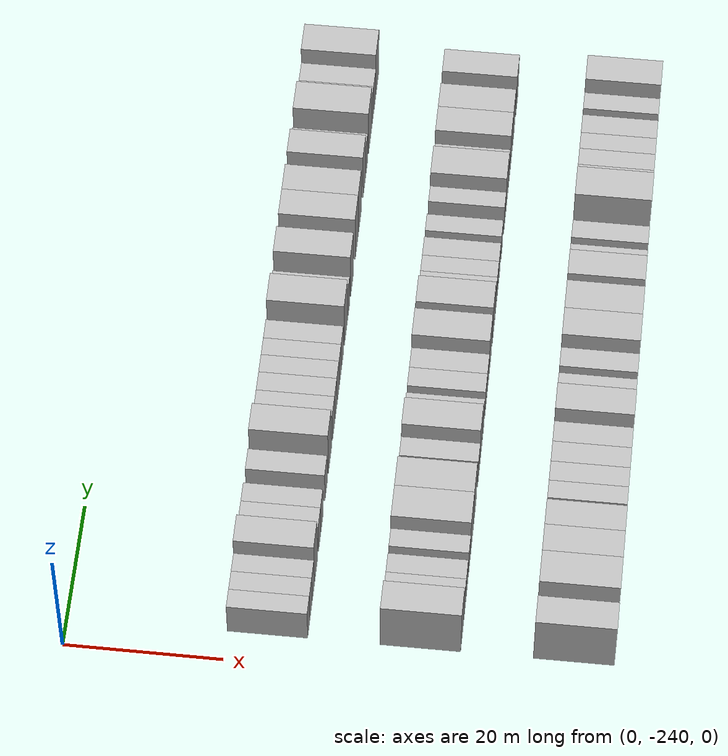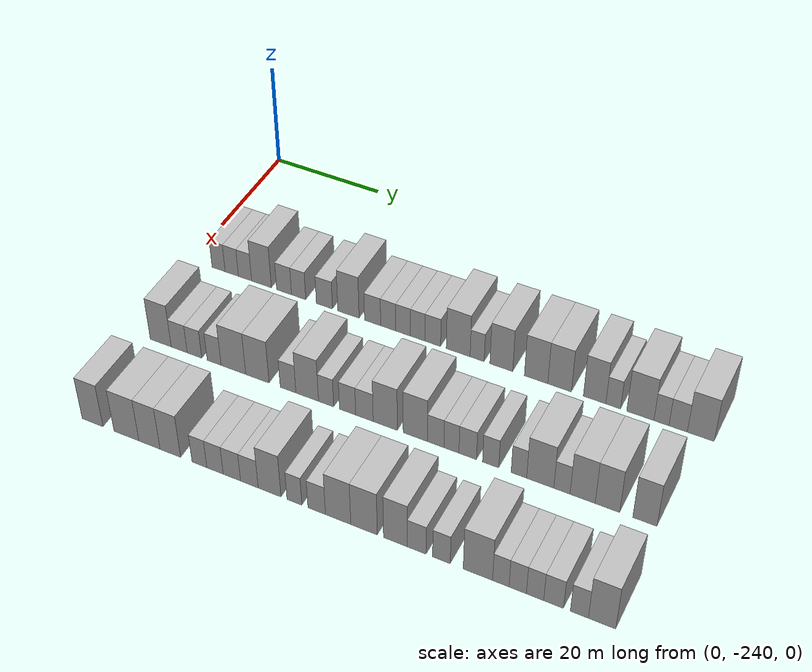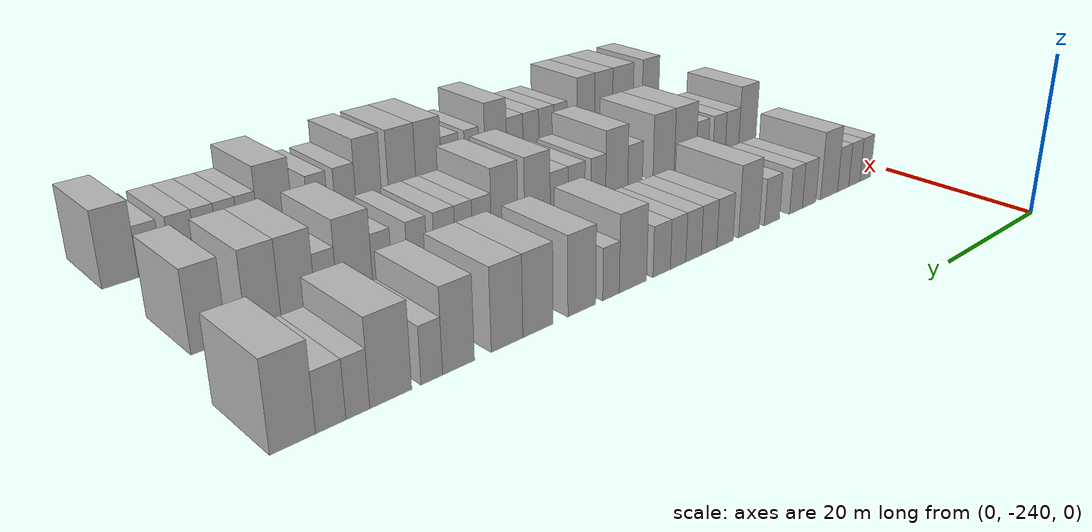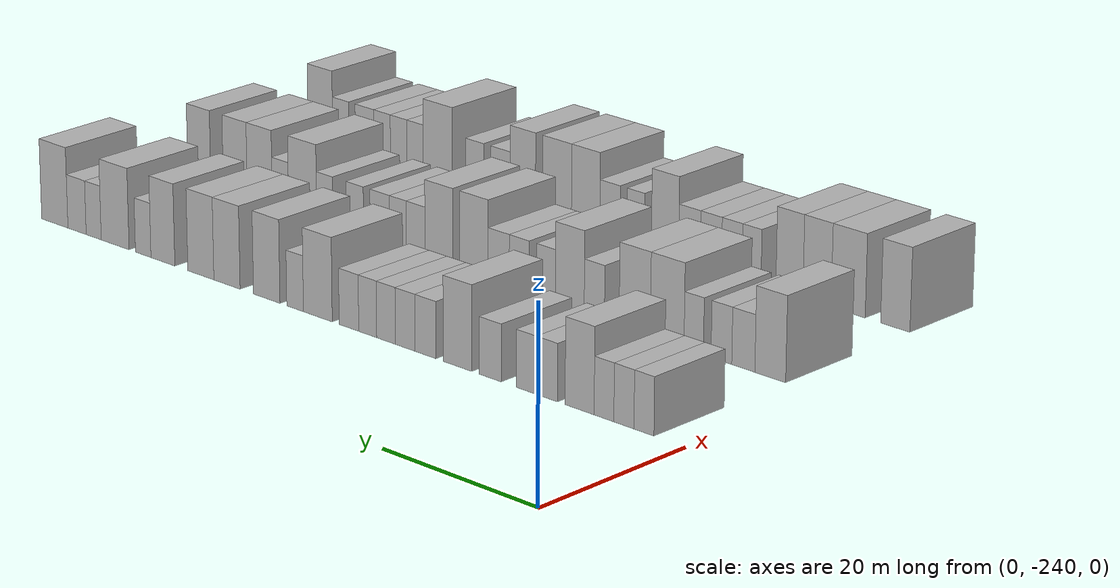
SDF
<sdf version="1.6">
 <world name="default">
  <model name="building_1">
   <static>1</static>
   <pose>25.0000 -234.7300 0 0.000000 0.000000 0.000000</pose>
   <link name="link">
    <pose>0 0 3.00 0 0 0</pose>
    <collision name="collision"><geometry><box><size>10.0000 2.5399 6.0000</size></box></geometry></collision>
    <visual name="visual">
     <cast_shadows>0</cast_shadows>
     <geometry><box><size>10.0000 2.5399 6.0000</size></box></geometry>
     <material>
      <script>
       <uri>model://HANNAS_wall/materials/scripts</uri>
       <uri>model://HANNAS_wall/materials/textures</uri>
       <name>vrc/HANNAS_wall</name>
      </script>
     </material>
    </visual>
   </link>
  </model>
  <model name="building_2">
   <static>1</static>
   <pose>25.0000 -232.1696 0 0.000000 0.000000 0.000000</pose>
   <link name="link">
    <pose>0 0 3.00 0 0 0</pose>
    <collision name="collision"><geometry><box><size>10.0000 2.5809 6.0000</size></box></geometry></collision>
    <visual name="visual">
     <cast_shadows>0</cast_shadows>
     <geometry><box><size>10.0000 2.5809 6.0000</size></box></geometry>
     <material>
      <script>
       <uri>model://HANNAS_wall/materials/scripts</uri>
       <uri>model://HANNAS_wall/materials/textures</uri>
       <name>vrc/HANNAS_wall</name>
      </script>
     </material>
    </visual>
   </link>
  </model>
  <model name="building_3">
   <static>1</static>
   <pose>25.0000 -229.6061 0 0.000000 0.000000 0.000000</pose>
   <link name="link">
    <pose>0 0 3.00 0 0 0</pose>
    <collision name="collision"><geometry><box><size>10.0000 2.5462 6.0000</size></box></geometry></collision>
    <visual name="visual">
     <cast_shadows>0</cast_shadows>
     <geometry><box><size>10.0000 2.5462 6.0000</size></box></geometry>
     <material>
      <script>
       <uri>model://HANNAS_wall/materials/scripts</uri>
       <uri>model://HANNAS_wall/materials/textures</uri>
       <name>vrc/HANNAS_wall</name>
      </script>
     </material>
    </visual>
   </link>
  </model>
  <model name="building_4">
   <static>1</static>
   <pose>25.0000 -226.4390 0 0.000000 0.000000 0.000000</pose>
   <link name="link">
    <pose>0 0 4.50 0 0 0</pose>
    <collision name="collision"><geometry><box><size>10.0000 3.7880 9.0000</size></box></geometry></collision>
    <visual name="visual">
     <cast_shadows>0</cast_shadows>
     <geometry><box><size>10.0000 3.7880 9.0000</size></box></geometry>
     <material>
      <script>
       <uri>model://HANNAS_wall/materials/scripts</uri>
       <uri>model://HANNAS_wall/materials/textures</uri>
       <name>vrc/HANNAS_wall</name>
      </script>
     </material>
    </visual>
   </link>
  </model>
  <model name="building_5">
   <static>1</static>
   <pose>25.0000 -222.1377 0 0.000000 0.000000 0.000000</pose>
   <link name="link">
    <pose>0 0 3.00 0 0 0</pose>
    <collision name="collision"><geometry><box><size>10.0000 2.8146 6.0000</size></box></geometry></collision>
    <visual name="visual">
     <cast_shadows>0</cast_shadows>
     <geometry><box><size>10.0000 2.8146 6.0000</size></box></geometry>
     <material>
      <script>
       <uri>model://HANNAS_wall/materials/scripts</uri>
       <uri>model://HANNAS_wall/materials/textures</uri>
       <name>vrc/HANNAS_wall</name>
      </script>
     </material>
    </visual>
   </link>
  </model>
  <model name="building_6">
   <static>1</static>
   <pose>25.0000 -219.3900 0 0.000000 0.000000 0.000000</pose>
   <link name="link">
    <pose>0 0 3.00 0 0 0</pose>
    <collision name="collision"><geometry><box><size>10.0000 2.6808 6.0000</size></box></geometry></collision>
    <visual name="visual">
     <cast_shadows>0</cast_shadows>
     <geometry><box><size>10.0000 2.6808 6.0000</size></box></geometry>
     <material>
      <script>
       <uri>model://HANNAS_wall/materials/scripts</uri>
       <uri>model://HANNAS_wall/materials/textures</uri>
       <name>vrc/HANNAS_wall</name>
      </script>
     </material>
    </visual>
   </link>
  </model>
  <model name="building_7">
   <static>1</static>
   <pose>25.0000 -214.5539 0 0.000000 0.000000 0.000000</pose>
   <link name="link">
    <pose>0 0 3.00 0 0 0</pose>
    <collision name="collision"><geometry><box><size>10.0000 2.9915 6.0000</size></box></geometry></collision>
    <visual name="visual">
     <cast_shadows>0</cast_shadows>
     <geometry><box><size>10.0000 2.9915 6.0000</size></box></geometry>
     <material>
      <script>
       <uri>model://HANNAS_wall/materials/scripts</uri>
       <uri>model://HANNAS_wall/materials/textures</uri>
       <name>vrc/HANNAS_wall</name>
      </script>
     </material>
    </visual>
   </link>
  </model>
  <model name="building_8">
   <static>1</static>
   <pose>25.0000 -210.1084 0 0.000000 0.000000 0.000000</pose>
   <link name="link">
    <pose>0 0 4.50 0 0 0</pose>
    <collision name="collision"><geometry><box><size>10.0000 3.8995 9.0000</size></box></geometry></collision>
    <visual name="visual">
     <cast_shadows>0</cast_shadows>
     <geometry><box><size>10.0000 3.8995 9.0000</size></box></geometry>
     <material>
      <script>
       <uri>model://HANNAS_wall/materials/scripts</uri>
       <uri>model://HANNAS_wall/materials/textures</uri>
       <name>vrc/HANNAS_wall</name>
      </script>
     </material>
    </visual>
   </link>
  </model>
  <model name="building_9">
   <static>1</static>
   <pose>25.0000 -205.6947 0 0.000000 0.000000 0.000000</pose>
   <link name="link">
    <pose>0 0 3.00 0 0 0</pose>
    <collision name="collision"><geometry><box><size>10.0000 2.9279 6.0000</size></box></geometry></collision>
    <visual name="visual">
     <cast_shadows>0</cast_shadows>
     <geometry><box><size>10.0000 2.9279 6.0000</size></box></geometry>
     <material>
      <script>
       <uri>model://HANNAS_wall/materials/scripts</uri>
       <uri>model://HANNAS_wall/materials/textures</uri>
       <name>vrc/HANNAS_wall</name>
      </script>
     </material>
    </visual>
   </link>
  </model>
  <model name="building_10">
   <static>1</static>
   <pose>25.0000 -202.8635 0 0.000000 0.000000 0.000000</pose>
   <link name="link">
    <pose>0 0 3.00 0 0 0</pose>
    <collision name="collision"><geometry><box><size>10.0000 2.7345 6.0000</size></box></geometry></collision>
    <visual name="visual">
     <cast_shadows>0</cast_shadows>
     <geometry><box><size>10.0000 2.7345 6.0000</size></box></geometry>
     <material>
      <script>
       <uri>model://HANNAS_wall/materials/scripts</uri>
       <uri>model://HANNAS_wall/materials/textures</uri>
       <name>vrc/HANNAS_wall</name>
      </script>
     </material>
    </visual>
   </link>
  </model>
  <model name="building_11">
   <static>1</static>
   <pose>25.0000 -200.1783 0 0.000000 0.000000 0.000000</pose>
   <link name="link">
    <pose>0 0 3.00 0 0 0</pose>
    <collision name="collision"><geometry><box><size>10.0000 2.6359 6.0000</size></box></geometry></collision>
    <visual name="visual">
     <cast_shadows>0</cast_shadows>
     <geometry><box><size>10.0000 2.6359 6.0000</size></box></geometry>
     <material>
      <script>
       <uri>model://HANNAS_wall/materials/scripts</uri>
       <uri>model://HANNAS_wall/materials/textures</uri>
       <name>vrc/HANNAS_wall</name>
      </script>
     </material>
    </visual>
   </link>
  </model>
  <model name="building_12">
   <static>1</static>
   <pose>25.0000 -197.5821 0 0.000000 0.000000 0.000000</pose>
   <link name="link">
    <pose>0 0 3.00 0 0 0</pose>
    <collision name="collision"><geometry><box><size>10.0000 2.5566 6.0000</size></box></geometry></collision>
    <visual name="visual">
     <cast_shadows>0</cast_shadows>
     <geometry><box><size>10.0000 2.5566 6.0000</size></box></geometry>
     <material>
      <script>
       <uri>model://HANNAS_wall/materials/scripts</uri>
       <uri>model://HANNAS_wall/materials/textures</uri>
       <name>vrc/HANNAS_wall</name>
      </script>
     </material>
    </visual>
   </link>
  </model>
  <model name="building_13">
   <static>1</static>
   <pose>25.0000 -194.9062 0 0.000000 0.000000 0.000000</pose>
   <link name="link">
    <pose>0 0 3.00 0 0 0</pose>
    <collision name="collision"><geometry><box><size>10.0000 2.7951 6.0000</size></box></geometry></collision>
    <visual name="visual">
     <cast_shadows>0</cast_shadows>
     <geometry><box><size>10.0000 2.7951 6.0000</size></box></geometry>
     <material>
      <script>
       <uri>model://HANNAS_wall/materials/scripts</uri>
       <uri>model://HANNAS_wall/materials/textures</uri>
       <name>vrc/HANNAS_wall</name>
      </script>
     </material>
    </visual>
   </link>
  </model>
  <model name="building_14">
   <static>1</static>
   <pose>25.0000 -190.4212 0 0.000000 0.000000 0.000000</pose>
   <link name="link">
    <pose>0 0 4.50 0 0 0</pose>
    <collision name="collision"><geometry><box><size>10.0000 4.1749 9.0000</size></box></geometry></collision>
    <visual name="visual">
     <cast_shadows>0</cast_shadows>
     <geometry><box><size>10.0000 4.1749 9.0000</size></box></geometry>
     <material>
      <script>
       <uri>model://HANNAS_wall/materials/scripts</uri>
       <uri>model://HANNAS_wall/materials/textures</uri>
       <name>vrc/HANNAS_wall</name>
      </script>
     </material>
    </visual>
   </link>
  </model>
  <model name="building_15">
   <static>1</static>
   <pose>25.0000 -187.1157 0 0.000000 0.000000 0.000000</pose>
   <link name="link">
    <pose>0 0 3.00 0 0 0</pose>
    <collision name="collision"><geometry><box><size>10.0000 2.4363 6.0000</size></box></geometry></collision>
    <visual name="visual">
     <cast_shadows>0</cast_shadows>
     <geometry><box><size>10.0000 2.4363 6.0000</size></box></geometry>
     <material>
      <script>
       <uri>model://HANNAS_wall/materials/scripts</uri>
       <uri>model://HANNAS_wall/materials/textures</uri>
       <name>vrc/HANNAS_wall</name>
      </script>
     </material>
    </visual>
   </link>
  </model>
  <model name="building_16">
   <static>1</static>
   <pose>25.0000 -182.9373 0 0.000000 0.000000 0.000000</pose>
   <link name="link">
    <pose>0 0 4.50 0 0 0</pose>
    <collision name="collision"><geometry><box><size>10.0000 3.9205 9.0000</size></box></geometry></collision>
    <visual name="visual">
     <cast_shadows>0</cast_shadows>
     <geometry><box><size>10.0000 3.9205 9.0000</size></box></geometry>
     <material>
      <script>
       <uri>model://HANNAS_wall/materials/scripts</uri>
       <uri>model://HANNAS_wall/materials/textures</uri>
       <name>vrc/HANNAS_wall</name>
      </script>
     </material>
    </visual>
   </link>
  </model>
  <model name="building_17">
   <static>1</static>
   <pose>25.0000 -177.0001 0 0.000000 0.000000 0.000000</pose>
   <link name="link">
    <pose>0 0 4.50 0 0 0</pose>
    <collision name="collision"><geometry><box><size>10.0000 3.9538 9.0000</size></box></geometry></collision>
    <visual name="visual">
     <cast_shadows>0</cast_shadows>
     <geometry><box><size>10.0000 3.9538 9.0000</size></box></geometry>
     <material>
      <script>
       <uri>model://HANNAS_wall/materials/scripts</uri>
       <uri>model://HANNAS_wall/materials/textures</uri>
       <name>vrc/HANNAS_wall</name>
      </script>
     </material>
    </visual>
   </link>
  </model>
  <model name="building_18">
   <static>1</static>
   <pose>25.0000 -173.0439 0 0.000000 0.000000 0.000000</pose>
   <link name="link">
    <pose>0 0 4.50 0 0 0</pose>
    <collision name="collision"><geometry><box><size>10.0000 3.9588 9.0000</size></box></geometry></collision>
    <visual name="visual">
     <cast_shadows>0</cast_shadows>
     <geometry><box><size>10.0000 3.9588 9.0000</size></box></geometry>
     <material>
      <script>
       <uri>model://HANNAS_wall/materials/scripts</uri>
       <uri>model://HANNAS_wall/materials/textures</uri>
       <name>vrc/HANNAS_wall</name>
      </script>
     </material>
    </visual>
   </link>
  </model>
  <model name="building_19">
   <static>1</static>
   <pose>25.0000 -167.2151 0 0.000000 0.000000 0.000000</pose>
   <link name="link">
    <pose>0 0 4.50 0 0 0</pose>
    <collision name="collision"><geometry><box><size>10.0000 3.6988 9.0000</size></box></geometry></collision>
    <visual name="visual">
     <cast_shadows>0</cast_shadows>
     <geometry><box><size>10.0000 3.6988 9.0000</size></box></geometry>
     <material>
      <script>
       <uri>model://HANNAS_wall/materials/scripts</uri>
       <uri>model://HANNAS_wall/materials/textures</uri>
       <name>vrc/HANNAS_wall</name>
      </script>
     </material>
    </visual>
   </link>
  </model>
  <model name="building_20">
   <static>1</static>
   <pose>25.0000 -164.1573 0 0.000000 0.000000 0.000000</pose>
   <link name="link">
    <pose>0 0 3.00 0 0 0</pose>
    <collision name="collision"><geometry><box><size>10.0000 2.4168 6.0000</size></box></geometry></collision>
    <visual name="visual">
     <cast_shadows>0</cast_shadows>
     <geometry><box><size>10.0000 2.4168 6.0000</size></box></geometry>
     <material>
      <script>
       <uri>model://HANNAS_wall/materials/scripts</uri>
       <uri>model://HANNAS_wall/materials/textures</uri>
       <name>vrc/HANNAS_wall</name>
      </script>
     </material>
    </visual>
   </link>
  </model>
  <model name="building_21">
   <static>1</static>
   <pose>25.0000 -159.7480 0 0.000000 0.000000 0.000000</pose>
   <link name="link">
    <pose>0 0 4.50 0 0 0</pose>
    <collision name="collision"><geometry><box><size>10.0000 4.4018 9.0000</size></box></geometry></collision>
    <visual name="visual">
     <cast_shadows>0</cast_shadows>
     <geometry><box><size>10.0000 4.4018 9.0000</size></box></geometry>
     <material>
      <script>
       <uri>model://HANNAS_wall/materials/scripts</uri>
       <uri>model://HANNAS_wall/materials/textures</uri>
       <name>vrc/HANNAS_wall</name>
      </script>
     </material>
    </visual>
   </link>
  </model>
  <model name="building_22">
   <static>1</static>
   <pose>25.0000 -156.3460 0 0.000000 0.000000 0.000000</pose>
   <link name="link">
    <pose>0 0 3.00 0 0 0</pose>
    <collision name="collision"><geometry><box><size>10.0000 2.4022 6.0000</size></box></geometry></collision>
    <visual name="visual">
     <cast_shadows>0</cast_shadows>
     <geometry><box><size>10.0000 2.4022 6.0000</size></box></geometry>
     <material>
      <script>
       <uri>model://HANNAS_wall/materials/scripts</uri>
       <uri>model://HANNAS_wall/materials/textures</uri>
       <name>vrc/HANNAS_wall</name>
      </script>
     </material>
    </visual>
   </link>
  </model>
  <model name="building_23">
   <static>1</static>
   <pose>25.0000 -153.6827 0 0.000000 0.000000 0.000000</pose>
   <link name="link">
    <pose>0 0 3.00 0 0 0</pose>
    <collision name="collision"><geometry><box><size>10.0000 2.9243 6.0000</size></box></geometry></collision>
    <visual name="visual">
     <cast_shadows>0</cast_shadows>
     <geometry><box><size>10.0000 2.9243 6.0000</size></box></geometry>
     <material>
      <script>
       <uri>model://HANNAS_wall/materials/scripts</uri>
       <uri>model://HANNAS_wall/materials/textures</uri>
       <name>vrc/HANNAS_wall</name>
      </script>
     </material>
    </visual>
   </link>
  </model>
  <model name="building_24">
   <static>1</static>
   <pose>25.0000 -150.0973 0 0.000000 0.000000 0.000000</pose>
   <link name="link">
    <pose>0 0 4.50 0 0 0</pose>
    <collision name="collision"><geometry><box><size>10.0000 4.2466 9.0000</size></box></geometry></collision>
    <visual name="visual">
     <cast_shadows>0</cast_shadows>
     <geometry><box><size>10.0000 4.2466 9.0000</size></box></geometry>
     <material>
      <script>
       <uri>model://HANNAS_wall/materials/scripts</uri>
       <uri>model://HANNAS_wall/materials/textures</uri>
       <name>vrc/HANNAS_wall</name>
      </script>
     </material>
    </visual>
   </link>
  </model>
  <model name="building_115">
   <static>1</static>
   <pose>44.0000 -234.0257 0 0.000000 0.000000 0.000000</pose>
   <link name="link">
    <pose>0 0 4.50 0 0 0</pose>
    <collision name="collision"><geometry><box><size>10.0000 3.9485 9.0000</size></box></geometry></collision>
    <visual name="visual">
     <cast_shadows>0</cast_shadows>
     <geometry><box><size>10.0000 3.9485 9.0000</size></box></geometry>
     <material>
      <script>
       <uri>model://HANNAS_wall/materials/scripts</uri>
       <uri>model://HANNAS_wall/materials/textures</uri>
       <name>vrc/HANNAS_wall</name>
      </script>
     </material>
    </visual>
   </link>
  </model>
  <model name="building_116">
   <static>1</static>
   <pose>44.0000 -230.5556 0 0.000000 0.000000 0.000000</pose>
   <link name="link">
    <pose>0 0 3.00 0 0 0</pose>
    <collision name="collision"><geometry><box><size>10.0000 2.9916 6.0000</size></box></geometry></collision>
    <visual name="visual">
     <cast_shadows>0</cast_shadows>
     <geometry><box><size>10.0000 2.9916 6.0000</size></box></geometry>
     <material>
      <script>
       <uri>model://HANNAS_wall/materials/scripts</uri>
       <uri>model://HANNAS_wall/materials/textures</uri>
       <name>vrc/HANNAS_wall</name>
      </script>
     </material>
    </visual>
   </link>
  </model>
  <model name="building_117">
   <static>1</static>
   <pose>44.0000 -227.7098 0 0.000000 0.000000 0.000000</pose>
   <link name="link">
    <pose>0 0 3.00 0 0 0</pose>
    <collision name="collision"><geometry><box><size>10.0000 2.7000 6.0000</size></box></geometry></collision>
    <visual name="visual">
     <cast_shadows>0</cast_shadows>
     <geometry><box><size>10.0000 2.7000 6.0000</size></box></geometry>
     <material>
      <script>
       <uri>model://HANNAS_wall/materials/scripts</uri>
       <uri>model://HANNAS_wall/materials/textures</uri>
       <name>vrc/HANNAS_wall</name>
      </script>
     </material>
    </visual>
   </link>
  </model>
  <model name="building_118">
   <static>1</static>
   <pose>44.0000 -224.0791 0 0.000000 0.000000 0.000000</pose>
   <link name="link">
    <pose>0 0 3.00 0 0 0</pose>
    <collision name="collision"><geometry><box><size>10.0000 2.5614 6.0000</size></box></geometry></collision>
    <visual name="visual">
     <cast_shadows>0</cast_shadows>
     <geometry><box><size>10.0000 2.5614 6.0000</size></box></geometry>
     <material>
      <script>
       <uri>model://HANNAS_wall/materials/scripts</uri>
       <uri>model://HANNAS_wall/materials/textures</uri>
       <name>vrc/HANNAS_wall</name>
      </script>
     </material>
    </visual>
   </link>
  </model>
  <model name="building_119">
   <static>1</static>
   <pose>44.0000 -220.5550 0 0.000000 0.000000 0.000000</pose>
   <link name="link">
    <pose>0 0 4.50 0 0 0</pose>
    <collision name="collision"><geometry><box><size>10.0000 4.4866 9.0000</size></box></geometry></collision>
    <visual name="visual">
     <cast_shadows>0</cast_shadows>
     <geometry><box><size>10.0000 4.4866 9.0000</size></box></geometry>
     <material>
      <script>
       <uri>model://HANNAS_wall/materials/scripts</uri>
       <uri>model://HANNAS_wall/materials/textures</uri>
       <name>vrc/HANNAS_wall</name>
      </script>
     </material>
    </visual>
   </link>
  </model>
  <model name="building_120">
   <static>1</static>
   <pose>44.0000 -216.2073 0 0.000000 0.000000 0.000000</pose>
   <link name="link">
    <pose>0 0 4.50 0 0 0</pose>
    <collision name="collision"><geometry><box><size>10.0000 4.2089 9.0000</size></box></geometry></collision>
    <visual name="visual">
     <cast_shadows>0</cast_shadows>
     <geometry><box><size>10.0000 4.2089 9.0000</size></box></geometry>
     <material>
      <script>
       <uri>model://HANNAS_wall/materials/scripts</uri>
       <uri>model://HANNAS_wall/materials/textures</uri>
       <name>vrc/HANNAS_wall</name>
      </script>
     </material>
    </visual>
   </link>
  </model>
  <model name="building_121">
   <static>1</static>
   <pose>44.0000 -210.7141 0 0.000000 0.000000 0.000000</pose>
   <link name="link">
    <pose>0 0 3.00 0 0 0</pose>
    <collision name="collision"><geometry><box><size>10.0000 2.7776 6.0000</size></box></geometry></collision>
    <visual name="visual">
     <cast_shadows>0</cast_shadows>
     <geometry><box><size>10.0000 2.7776 6.0000</size></box></geometry>
     <material>
      <script>
       <uri>model://HANNAS_wall/materials/scripts</uri>
       <uri>model://HANNAS_wall/materials/textures</uri>
       <name>vrc/HANNAS_wall</name>
      </script>
     </material>
    </visual>
   </link>
  </model>
  <model name="building_122">
   <static>1</static>
   <pose>44.0000 -207.3305 0 0.000000 0.000000 0.000000</pose>
   <link name="link">
    <pose>0 0 4.50 0 0 0</pose>
    <collision name="collision"><geometry><box><size>10.0000 3.9896 9.0000</size></box></geometry></collision>
    <visual name="visual">
     <cast_shadows>0</cast_shadows>
     <geometry><box><size>10.0000 3.9896 9.0000</size></box></geometry>
     <material>
      <script>
       <uri>model://HANNAS_wall/materials/scripts</uri>
       <uri>model://HANNAS_wall/materials/textures</uri>
       <name>vrc/HANNAS_wall</name>
      </script>
     </material>
    </visual>
   </link>
  </model>
  <model name="building_123">
   <static>1</static>
   <pose>44.0000 -204.0072 0 0.000000 0.000000 0.000000</pose>
   <link name="link">
    <pose>0 0 3.00 0 0 0</pose>
    <collision name="collision"><geometry><box><size>10.0000 2.6569 6.0000</size></box></geometry></collision>
    <visual name="visual">
     <cast_shadows>0</cast_shadows>
     <geometry><box><size>10.0000 2.6569 6.0000</size></box></geometry>
     <material>
      <script>
       <uri>model://HANNAS_wall/materials/scripts</uri>
       <uri>model://HANNAS_wall/materials/textures</uri>
       <name>vrc/HANNAS_wall</name>
      </script>
     </material>
    </visual>
   </link>
  </model>
  <model name="building_124">
   <static>1</static>
   <pose>44.0000 -200.2692 0 0.000000 0.000000 0.000000</pose>
   <link name="link">
    <pose>0 0 3.00 0 0 0</pose>
    <collision name="collision"><geometry><box><size>10.0000 2.8190 6.0000</size></box></geometry></collision>
    <visual name="visual">
     <cast_shadows>0</cast_shadows>
     <geometry><box><size>10.0000 2.8190 6.0000</size></box></geometry>
     <material>
      <script>
       <uri>model://HANNAS_wall/materials/scripts</uri>
       <uri>model://HANNAS_wall/materials/textures</uri>
       <name>vrc/HANNAS_wall</name>
      </script>
     </material>
    </visual>
   </link>
  </model>
  <model name="building_125">
   <static>1</static>
   <pose>44.0000 -197.3698 0 0.000000 0.000000 0.000000</pose>
   <link name="link">
    <pose>0 0 3.00 0 0 0</pose>
    <collision name="collision"><geometry><box><size>10.0000 2.9800 6.0000</size></box></geometry></collision>
    <visual name="visual">
     <cast_shadows>0</cast_shadows>
     <geometry><box><size>10.0000 2.9800 6.0000</size></box></geometry>
     <material>
      <script>
       <uri>model://HANNAS_wall/materials/scripts</uri>
       <uri>model://HANNAS_wall/materials/textures</uri>
       <name>vrc/HANNAS_wall</name>
      </script>
     </material>
    </visual>
   </link>
  </model>
  <model name="building_126">
   <static>1</static>
   <pose>44.0000 -193.8263 0 0.000000 0.000000 0.000000</pose>
   <link name="link">
    <pose>0 0 4.50 0 0 0</pose>
    <collision name="collision"><geometry><box><size>10.0000 4.1069 9.0000</size></box></geometry></collision>
    <visual name="visual">
     <cast_shadows>0</cast_shadows>
     <geometry><box><size>10.0000 4.1069 9.0000</size></box></geometry>
     <material>
      <script>
       <uri>model://HANNAS_wall/materials/scripts</uri>
       <uri>model://HANNAS_wall/materials/textures</uri>
       <name>vrc/HANNAS_wall</name>
      </script>
     </material>
    </visual>
   </link>
  </model>
  <model name="building_127">
   <static>1</static>
   <pose>44.0000 -188.7531 0 0.000000 0.000000 0.000000</pose>
   <link name="link">
    <pose>0 0 4.50 0 0 0</pose>
    <collision name="collision"><geometry><box><size>10.0000 4.0395 9.0000</size></box></geometry></collision>
    <visual name="visual">
     <cast_shadows>0</cast_shadows>
     <geometry><box><size>10.0000 4.0395 9.0000</size></box></geometry>
     <material>
      <script>
       <uri>model://HANNAS_wall/materials/scripts</uri>
       <uri>model://HANNAS_wall/materials/textures</uri>
       <name>vrc/HANNAS_wall</name>
      </script>
     </material>
    </visual>
   </link>
  </model>
  <model name="building_128">
   <static>1</static>
   <pose>44.0000 -185.3558 0 0.000000 0.000000 0.000000</pose>
   <link name="link">
    <pose>0 0 3.00 0 0 0</pose>
    <collision name="collision"><geometry><box><size>10.0000 2.7552 6.0000</size></box></geometry></collision>
    <visual name="visual">
     <cast_shadows>0</cast_shadows>
     <geometry><box><size>10.0000 2.7552 6.0000</size></box></geometry>
     <material>
      <script>
       <uri>model://HANNAS_wall/materials/scripts</uri>
       <uri>model://HANNAS_wall/materials/textures</uri>
       <name>vrc/HANNAS_wall</name>
      </script>
     </material>
    </visual>
   </link>
  </model>
  <model name="building_129">
   <static>1</static>
   <pose>44.0000 -182.7346 0 0.000000 0.000000 0.000000</pose>
   <link name="link">
    <pose>0 0 3.00 0 0 0</pose>
    <collision name="collision"><geometry><box><size>10.0000 2.4872 6.0000</size></box></geometry></collision>
    <visual name="visual">
     <cast_shadows>0</cast_shadows>
     <geometry><box><size>10.0000 2.4872 6.0000</size></box></geometry>
     <material>
      <script>
       <uri>model://HANNAS_wall/materials/scripts</uri>
       <uri>model://HANNAS_wall/materials/textures</uri>
       <name>vrc/HANNAS_wall</name>
      </script>
     </material>
    </visual>
   </link>
  </model>
  <model name="building_130">
   <static>1</static>
   <pose>44.0000 -180.0536 0 0.000000 0.000000 0.000000</pose>
   <link name="link">
    <pose>0 0 3.00 0 0 0</pose>
    <collision name="collision"><geometry><box><size>10.0000 2.8748 6.0000</size></box></geometry></collision>
    <visual name="visual">
     <cast_shadows>0</cast_shadows>
     <geometry><box><size>10.0000 2.8748 6.0000</size></box></geometry>
     <material>
      <script>
       <uri>model://HANNAS_wall/materials/scripts</uri>
       <uri>model://HANNAS_wall/materials/textures</uri>
       <name>vrc/HANNAS_wall</name>
      </script>
     </material>
    </visual>
   </link>
  </model>
  <model name="building_131">
   <static>1</static>
   <pose>44.0000 -176.3027 0 0.000000 0.000000 0.000000</pose>
   <link name="link">
    <pose>0 0 3.00 0 0 0</pose>
    <collision name="collision"><geometry><box><size>10.0000 2.6269 6.0000</size></box></geometry></collision>
    <visual name="visual">
     <cast_shadows>0</cast_shadows>
     <geometry><box><size>10.0000 2.6269 6.0000</size></box></geometry>
     <material>
      <script>
       <uri>model://HANNAS_wall/materials/scripts</uri>
       <uri>model://HANNAS_wall/materials/textures</uri>
       <name>vrc/HANNAS_wall</name>
      </script>
     </material>
    </visual>
   </link>
  </model>
  <model name="building_132">
   <static>1</static>
   <pose>44.0000 -171.7484 0 0.000000 0.000000 0.000000</pose>
   <link name="link">
    <pose>0 0 3.00 0 0 0</pose>
    <collision name="collision"><geometry><box><size>10.0000 2.4817 6.0000</size></box></geometry></collision>
    <visual name="visual">
     <cast_shadows>0</cast_shadows>
     <geometry><box><size>10.0000 2.4817 6.0000</size></box></geometry>
     <material>
      <script>
       <uri>model://HANNAS_wall/materials/scripts</uri>
       <uri>model://HANNAS_wall/materials/textures</uri>
       <name>vrc/HANNAS_wall</name>
      </script>
     </material>
    </visual>
   </link>
  </model>
  <model name="building_133">
   <static>1</static>
   <pose>44.0000 -168.3449 0 0.000000 0.000000 0.000000</pose>
   <link name="link">
    <pose>0 0 4.50 0 0 0</pose>
    <collision name="collision"><geometry><box><size>10.0000 4.3253 9.0000</size></box></geometry></collision>
    <visual name="visual">
     <cast_shadows>0</cast_shadows>
     <geometry><box><size>10.0000 4.3253 9.0000</size></box></geometry>
     <material>
      <script>
       <uri>model://HANNAS_wall/materials/scripts</uri>
       <uri>model://HANNAS_wall/materials/textures</uri>
       <name>vrc/HANNAS_wall</name>
      </script>
     </material>
    </visual>
   </link>
  </model>
  <model name="building_134">
   <static>1</static>
   <pose>44.0000 -164.9098 0 0.000000 0.000000 0.000000</pose>
   <link name="link">
    <pose>0 0 3.00 0 0 0</pose>
    <collision name="collision"><geometry><box><size>10.0000 2.5447 6.0000</size></box></geometry></collision>
    <visual name="visual">
     <cast_shadows>0</cast_shadows>
     <geometry><box><size>10.0000 2.5447 6.0000</size></box></geometry>
     <material>
      <script>
       <uri>model://HANNAS_wall/materials/scripts</uri>
       <uri>model://HANNAS_wall/materials/textures</uri>
       <name>vrc/HANNAS_wall</name>
      </script>
     </material>
    </visual>
   </link>
  </model>
  <model name="building_135">
   <static>1</static>
   <pose>44.0000 -161.6790 0 0.000000 0.000000 0.000000</pose>
   <link name="link">
    <pose>0 0 4.50 0 0 0</pose>
    <collision name="collision"><geometry><box><size>10.0000 3.9169 9.0000</size></box></geometry></collision>
    <visual name="visual">
     <cast_shadows>0</cast_shadows>
     <geometry><box><size>10.0000 3.9169 9.0000</size></box></geometry>
     <material>
      <script>
       <uri>model://HANNAS_wall/materials/scripts</uri>
       <uri>model://HANNAS_wall/materials/textures</uri>
       <name>vrc/HANNAS_wall</name>
      </script>
     </material>
    </visual>
   </link>
  </model>
  <model name="building_136">
   <static>1</static>
   <pose>44.0000 -157.8261 0 0.000000 0.000000 0.000000</pose>
   <link name="link">
    <pose>0 0 4.50 0 0 0</pose>
    <collision name="collision"><geometry><box><size>10.0000 3.7888 9.0000</size></box></geometry></collision>
    <visual name="visual">
     <cast_shadows>0</cast_shadows>
     <geometry><box><size>10.0000 3.7888 9.0000</size></box></geometry>
     <material>
      <script>
       <uri>model://HANNAS_wall/materials/scripts</uri>
       <uri>model://HANNAS_wall/materials/textures</uri>
       <name>vrc/HANNAS_wall</name>
      </script>
     </material>
    </visual>
   </link>
  </model>
  <model name="building_137">
   <static>1</static>
   <pose>44.0000 -152.0893 0 0.000000 0.000000 0.000000</pose>
   <link name="link">
    <pose>0 0 4.50 0 0 0</pose>
    <collision name="collision"><geometry><box><size>10.0000 3.6848 9.0000</size></box></geometry></collision>
    <visual name="visual">
     <cast_shadows>0</cast_shadows>
     <geometry><box><size>10.0000 3.6848 9.0000</size></box></geometry>
     <material>
      <script>
       <uri>model://HANNAS_wall/materials/scripts</uri>
       <uri>model://HANNAS_wall/materials/textures</uri>
       <name>vrc/HANNAS_wall</name>
      </script>
     </material>
    </visual>
   </link>
  </model>
  <model name="building_234">
   <static>1</static>
   <pose>63.0000 -234.1098 0 0.000000 0.000000 0.000000</pose>
   <link name="link">
    <pose>0 0 4.50 0 0 0</pose>
    <collision name="collision"><geometry><box><size>10.0000 3.7804 9.0000</size></box></geometry></collision>
    <visual name="visual">
     <cast_shadows>0</cast_shadows>
     <geometry><box><size>10.0000 3.7804 9.0000</size></box></geometry>
     <material>
      <script>
       <uri>model://HANNAS_wall/materials/scripts</uri>
       <uri>model://HANNAS_wall/materials/textures</uri>
       <name>vrc/HANNAS_wall</name>
      </script>
     </material>
    </visual>
   </link>
  </model>
  <model name="building_235">
   <static>1</static>
   <pose>63.0000 -227.9857 0 0.000000 0.000000 0.000000</pose>
   <link name="link">
    <pose>0 0 4.50 0 0 0</pose>
    <collision name="collision"><geometry><box><size>10.0000 4.4678 9.0000</size></box></geometry></collision>
    <visual name="visual">
     <cast_shadows>0</cast_shadows>
     <geometry><box><size>10.0000 4.4678 9.0000</size></box></geometry>
     <material>
      <script>
       <uri>model://HANNAS_wall/materials/scripts</uri>
       <uri>model://HANNAS_wall/materials/textures</uri>
       <name>vrc/HANNAS_wall</name>
      </script>
     </material>
    </visual>
   </link>
  </model>
  <model name="building_236">
   <static>1</static>
   <pose>63.0000 -223.8763 0 0.000000 0.000000 0.000000</pose>
   <link name="link">
    <pose>0 0 4.50 0 0 0</pose>
    <collision name="collision"><geometry><box><size>10.0000 3.7511 9.0000</size></box></geometry></collision>
    <visual name="visual">
     <cast_shadows>0</cast_shadows>
     <geometry><box><size>10.0000 3.7511 9.0000</size></box></geometry>
     <material>
      <script>
       <uri>model://HANNAS_wall/materials/scripts</uri>
       <uri>model://HANNAS_wall/materials/textures</uri>
       <name>vrc/HANNAS_wall</name>
      </script>
     </material>
    </visual>
   </link>
  </model>
  <model name="building_237">
   <static>1</static>
   <pose>63.0000 -220.1913 0 0.000000 0.000000 0.000000</pose>
   <link name="link">
    <pose>0 0 4.50 0 0 0</pose>
    <collision name="collision"><geometry><box><size>10.0000 3.6191 9.0000</size></box></geometry></collision>
    <visual name="visual">
     <cast_shadows>0</cast_shadows>
     <geometry><box><size>10.0000 3.6191 9.0000</size></box></geometry>
     <material>
      <script>
       <uri>model://HANNAS_wall/materials/scripts</uri>
       <uri>model://HANNAS_wall/materials/textures</uri>
       <name>vrc/HANNAS_wall</name>
      </script>
     </material>
    </visual>
   </link>
  </model>
  <model name="building_238">
   <static>1</static>
   <pose>63.0000 -215.0956 0 0.000000 0.000000 0.000000</pose>
   <link name="link">
    <pose>0 0 3.00 0 0 0</pose>
    <collision name="collision"><geometry><box><size>10.0000 2.5722 6.0000</size></box></geometry></collision>
    <visual name="visual">
     <cast_shadows>0</cast_shadows>
     <geometry><box><size>10.0000 2.5722 6.0000</size></box></geometry>
     <material>
      <script>
       <uri>model://HANNAS_wall/materials/scripts</uri>
       <uri>model://HANNAS_wall/materials/textures</uri>
       <name>vrc/HANNAS_wall</name>
      </script>
     </material>
    </visual>
   </link>
  </model>
  <model name="building_239">
   <static>1</static>
   <pose>63.0000 -212.4000 0 0.000000 0.000000 0.000000</pose>
   <link name="link">
    <pose>0 0 3.00 0 0 0</pose>
    <collision name="collision"><geometry><box><size>10.0000 2.8191 6.0000</size></box></geometry></collision>
    <visual name="visual">
     <cast_shadows>0</cast_shadows>
     <geometry><box><size>10.0000 2.8191 6.0000</size></box></geometry>
     <material>
      <script>
       <uri>model://HANNAS_wall/materials/scripts</uri>
       <uri>model://HANNAS_wall/materials/textures</uri>
       <name>vrc/HANNAS_wall</name>
      </script>
     </material>
    </visual>
   </link>
  </model>
  <model name="building_240">
   <static>1</static>
   <pose>63.0000 -209.5131 0 0.000000 0.000000 0.000000</pose>
   <link name="link">
    <pose>0 0 3.00 0 0 0</pose>
    <collision name="collision"><geometry><box><size>10.0000 2.9546 6.0000</size></box></geometry></collision>
    <visual name="visual">
     <cast_shadows>0</cast_shadows>
     <geometry><box><size>10.0000 2.9546 6.0000</size></box></geometry>
     <material>
      <script>
       <uri>model://HANNAS_wall/materials/scripts</uri>
       <uri>model://HANNAS_wall/materials/textures</uri>
       <name>vrc/HANNAS_wall</name>
      </script>
     </material>
    </visual>
   </link>
  </model>
  <model name="building_241">
   <static>1</static>
   <pose>63.0000 -206.5413 0 0.000000 0.000000 0.000000</pose>
   <link name="link">
    <pose>0 0 3.00 0 0 0</pose>
    <collision name="collision"><geometry><box><size>10.0000 2.9889 6.0000</size></box></geometry></collision>
    <visual name="visual">
     <cast_shadows>0</cast_shadows>
     <geometry><box><size>10.0000 2.9889 6.0000</size></box></geometry>
     <material>
      <script>
       <uri>model://HANNAS_wall/materials/scripts</uri>
       <uri>model://HANNAS_wall/materials/textures</uri>
       <name>vrc/HANNAS_wall</name>
      </script>
     </material>
    </visual>
   </link>
  </model>
  <model name="building_242">
   <static>1</static>
   <pose>63.0000 -203.1338 0 0.000000 0.000000 0.000000</pose>
   <link name="link">
    <pose>0 0 4.50 0 0 0</pose>
    <collision name="collision"><geometry><box><size>10.0000 3.8261 9.0000</size></box></geometry></collision>
    <visual name="visual">
     <cast_shadows>0</cast_shadows>
     <geometry><box><size>10.0000 3.8261 9.0000</size></box></geometry>
     <material>
      <script>
       <uri>model://HANNAS_wall/materials/scripts</uri>
       <uri>model://HANNAS_wall/materials/textures</uri>
       <name>vrc/HANNAS_wall</name>
      </script>
     </material>
    </visual>
   </link>
  </model>
  <model name="building_243">
   <static>1</static>
   <pose>63.0000 -198.9866 0 0.000000 0.000000 0.000000</pose>
   <link name="link">
    <pose>0 0 3.00 0 0 0</pose>
    <collision name="collision"><geometry><box><size>10.0000 2.4683 6.0000</size></box></geometry></collision>
    <visual name="visual">
     <cast_shadows>0</cast_shadows>
     <geometry><box><size>10.0000 2.4683 6.0000</size></box></geometry>
     <material>
      <script>
       <uri>model://HANNAS_wall/materials/scripts</uri>
       <uri>model://HANNAS_wall/materials/textures</uri>
       <name>vrc/HANNAS_wall</name>
      </script>
     </material>
    </visual>
   </link>
  </model>
  <model name="building_244">
   <static>1</static>
   <pose>63.0000 -195.3146 0 0.000000 0.000000 0.000000</pose>
   <link name="link">
    <pose>0 0 3.00 0 0 0</pose>
    <collision name="collision"><geometry><box><size>10.0000 2.8756 6.0000</size></box></geometry></collision>
    <visual name="visual">
     <cast_shadows>0</cast_shadows>
     <geometry><box><size>10.0000 2.8756 6.0000</size></box></geometry>
     <material>
      <script>
       <uri>model://HANNAS_wall/materials/scripts</uri>
       <uri>model://HANNAS_wall/materials/textures</uri>
       <name>vrc/HANNAS_wall</name>
      </script>
     </material>
    </visual>
   </link>
  </model>
  <model name="building_245">
   <static>1</static>
   <pose>63.0000 -191.8198 0 0.000000 0.000000 0.000000</pose>
   <link name="link">
    <pose>0 0 4.50 0 0 0</pose>
    <collision name="collision"><geometry><box><size>10.0000 4.1140 9.0000</size></box></geometry></collision>
    <visual name="visual">
     <cast_shadows>0</cast_shadows>
     <geometry><box><size>10.0000 4.1140 9.0000</size></box></geometry>
     <material>
      <script>
       <uri>model://HANNAS_wall/materials/scripts</uri>
       <uri>model://HANNAS_wall/materials/textures</uri>
       <name>vrc/HANNAS_wall</name>
      </script>
     </material>
    </visual>
   </link>
  </model>
  <model name="building_246">
   <static>1</static>
   <pose>63.0000 -187.6301 0 0.000000 0.000000 0.000000</pose>
   <link name="link">
    <pose>0 0 4.50 0 0 0</pose>
    <collision name="collision"><geometry><box><size>10.0000 4.2656 9.0000</size></box></geometry></collision>
    <visual name="visual">
     <cast_shadows>0</cast_shadows>
     <geometry><box><size>10.0000 4.2656 9.0000</size></box></geometry>
     <material>
      <script>
       <uri>model://HANNAS_wall/materials/scripts</uri>
       <uri>model://HANNAS_wall/materials/textures</uri>
       <name>vrc/HANNAS_wall</name>
      </script>
     </material>
    </visual>
   </link>
  </model>
  <model name="building_247">
   <static>1</static>
   <pose>63.0000 -182.6094 0 0.000000 0.000000 0.000000</pose>
   <link name="link">
    <pose>0 0 4.50 0 0 0</pose>
    <collision name="collision"><geometry><box><size>10.0000 3.7758 9.0000</size></box></geometry></collision>
    <visual name="visual">
     <cast_shadows>0</cast_shadows>
     <geometry><box><size>10.0000 3.7758 9.0000</size></box></geometry>
     <material>
      <script>
       <uri>model://HANNAS_wall/materials/scripts</uri>
       <uri>model://HANNAS_wall/materials/textures</uri>
       <name>vrc/HANNAS_wall</name>
      </script>
     </material>
    </visual>
   </link>
  </model>
  <model name="building_248">
   <static>1</static>
   <pose>63.0000 -179.2462 0 0.000000 0.000000 0.000000</pose>
   <link name="link">
    <pose>0 0 3.00 0 0 0</pose>
    <collision name="collision"><geometry><box><size>10.0000 2.9506 6.0000</size></box></geometry></collision>
    <visual name="visual">
     <cast_shadows>0</cast_shadows>
     <geometry><box><size>10.0000 2.9506 6.0000</size></box></geometry>
     <material>
      <script>
       <uri>model://HANNAS_wall/materials/scripts</uri>
       <uri>model://HANNAS_wall/materials/textures</uri>
       <name>vrc/HANNAS_wall</name>
      </script>
     </material>
    </visual>
   </link>
  </model>
  <model name="building_249">
   <static>1</static>
   <pose>63.0000 -175.3968 0 0.000000 0.000000 0.000000</pose>
   <link name="link">
    <pose>0 0 3.00 0 0 0</pose>
    <collision name="collision"><geometry><box><size>10.0000 2.7481 6.0000</size></box></geometry></collision>
    <visual name="visual">
     <cast_shadows>0</cast_shadows>
     <geometry><box><size>10.0000 2.7481 6.0000</size></box></geometry>
     <material>
      <script>
       <uri>model://HANNAS_wall/materials/scripts</uri>
       <uri>model://HANNAS_wall/materials/textures</uri>
       <name>vrc/HANNAS_wall</name>
      </script>
     </material>
    </visual>
   </link>
  </model>
  <model name="building_250">
   <static>1</static>
   <pose>63.0000 -169.7843 0 0.000000 0.000000 0.000000</pose>
   <link name="link">
    <pose>0 0 4.50 0 0 0</pose>
    <collision name="collision"><geometry><box><size>10.0000 4.4769 9.0000</size></box></geometry></collision>
    <visual name="visual">
     <cast_shadows>0</cast_shadows>
     <geometry><box><size>10.0000 4.4769 9.0000</size></box></geometry>
     <material>
      <script>
       <uri>model://HANNAS_wall/materials/scripts</uri>
       <uri>model://HANNAS_wall/materials/textures</uri>
       <name>vrc/HANNAS_wall</name>
      </script>
     </material>
    </visual>
   </link>
  </model>
  <model name="building_251">
   <static>1</static>
   <pose>63.0000 -166.3007 0 0.000000 0.000000 0.000000</pose>
   <link name="link">
    <pose>0 0 3.00 0 0 0</pose>
    <collision name="collision"><geometry><box><size>10.0000 2.4903 6.0000</size></box></geometry></collision>
    <visual name="visual">
     <cast_shadows>0</cast_shadows>
     <geometry><box><size>10.0000 2.4903 6.0000</size></box></geometry>
     <material>
      <script>
       <uri>model://HANNAS_wall/materials/scripts</uri>
       <uri>model://HANNAS_wall/materials/textures</uri>
       <name>vrc/HANNAS_wall</name>
      </script>
     </material>
    </visual>
   </link>
  </model>
  <model name="building_252">
   <static>1</static>
   <pose>63.0000 -163.7550 0 0.000000 0.000000 0.000000</pose>
   <link name="link">
    <pose>0 0 3.00 0 0 0</pose>
    <collision name="collision"><geometry><box><size>10.0000 2.6011 6.0000</size></box></geometry></collision>
    <visual name="visual">
     <cast_shadows>0</cast_shadows>
     <geometry><box><size>10.0000 2.6011 6.0000</size></box></geometry>
     <material>
      <script>
       <uri>model://HANNAS_wall/materials/scripts</uri>
       <uri>model://HANNAS_wall/materials/textures</uri>
       <name>vrc/HANNAS_wall</name>
      </script>
     </material>
    </visual>
   </link>
  </model>
  <model name="building_253">
   <static>1</static>
   <pose>63.0000 -161.1598 0 0.000000 0.000000 0.000000</pose>
   <link name="link">
    <pose>0 0 3.00 0 0 0</pose>
    <collision name="collision"><geometry><box><size>10.0000 2.5893 6.0000</size></box></geometry></collision>
    <visual name="visual">
     <cast_shadows>0</cast_shadows>
     <geometry><box><size>10.0000 2.5893 6.0000</size></box></geometry>
     <material>
      <script>
       <uri>model://HANNAS_wall/materials/scripts</uri>
       <uri>model://HANNAS_wall/materials/textures</uri>
       <name>vrc/HANNAS_wall</name>
      </script>
     </material>
    </visual>
   </link>
  </model>
  <model name="building_254">
   <static>1</static>
   <pose>63.0000 -158.3992 0 0.000000 0.000000 0.000000</pose>
   <link name="link">
    <pose>0 0 3.00 0 0 0</pose>
    <collision name="collision"><geometry><box><size>10.0000 2.9318 6.0000</size></box></geometry></collision>
    <visual name="visual">
     <cast_shadows>0</cast_shadows>
     <geometry><box><size>10.0000 2.9318 6.0000</size></box></geometry>
     <material>
      <script>
       <uri>model://HANNAS_wall/materials/scripts</uri>
       <uri>model://HANNAS_wall/materials/textures</uri>
       <name>vrc/HANNAS_wall</name>
      </script>
     </material>
    </visual>
   </link>
  </model>
  <model name="building_255">
   <static>1</static>
   <pose>63.0000 -154.6199 0 0.000000 0.000000 0.000000</pose>
   <link name="link">
    <pose>0 0 3.00 0 0 0</pose>
    <collision name="collision"><geometry><box><size>10.0000 2.6270 6.0000</size></box></geometry></collision>
    <visual name="visual">
     <cast_shadows>0</cast_shadows>
     <geometry><box><size>10.0000 2.6270 6.0000</size></box></geometry>
     <material>
      <script>
       <uri>model://HANNAS_wall/materials/scripts</uri>
       <uri>model://HANNAS_wall/materials/textures</uri>
       <name>vrc/HANNAS_wall</name>
      </script>
     </material>
    </visual>
   </link>
  </model>
  <model name="building_256">
   <static>1</static>
   <pose>63.0000 -151.3208 0 0.000000 0.000000 0.000000</pose>
   <link name="link">
    <pose>0 0 4.50 0 0 0</pose>
    <collision name="collision"><geometry><box><size>10.0000 3.9711 9.0000</size></box></geometry></collision>
    <visual name="visual">
     <cast_shadows>0</cast_shadows>
     <geometry><box><size>10.0000 3.9711 9.0000</size></box></geometry>
     <material>
      <script>
       <uri>model://HANNAS_wall/materials/scripts</uri>
       <uri>model://HANNAS_wall/materials/textures</uri>
       <name>vrc/HANNAS_wall</name>
      </script>
     </material>
    </visual>
   </link>
  </model>
 </world>
</sdf>
